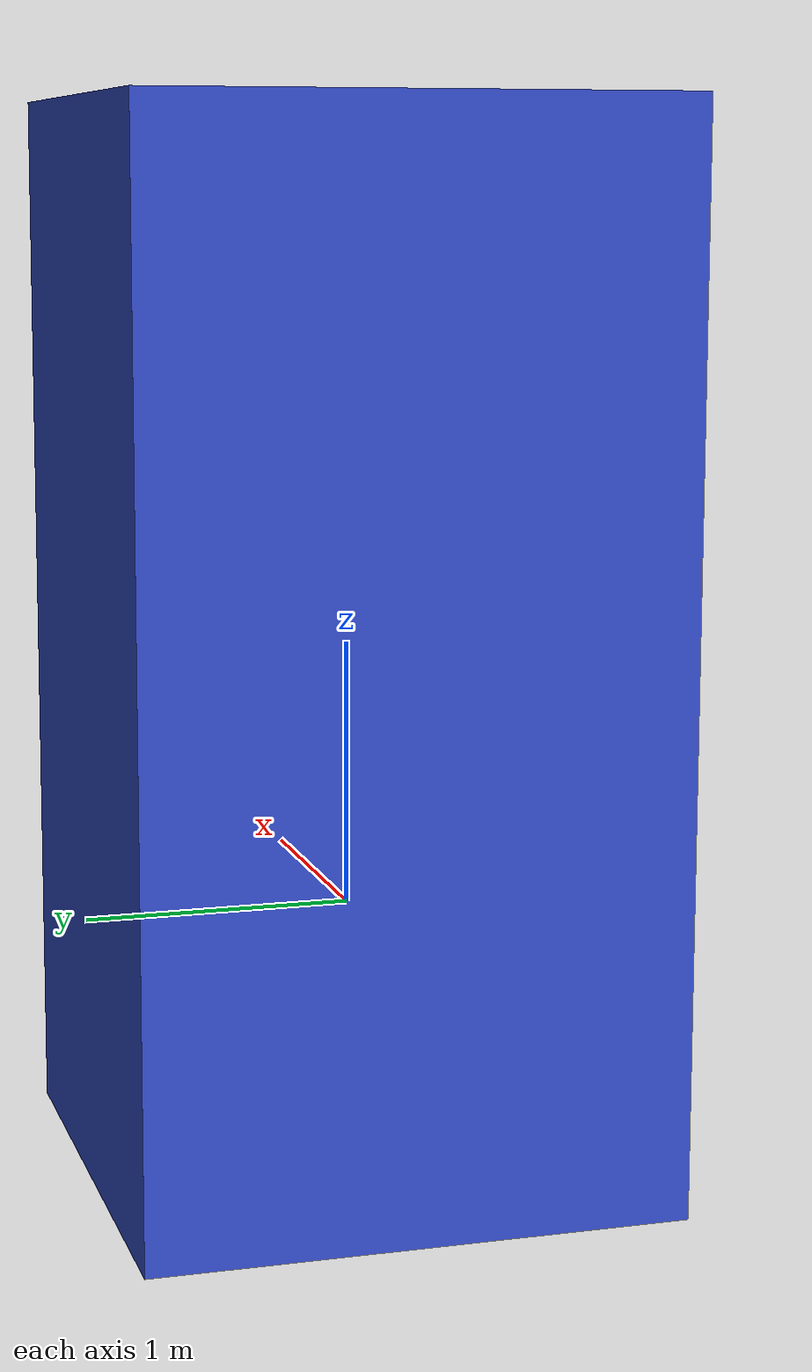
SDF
<?xml version="1.0" ?>
<sdf version="1.6">
  <model name="obstacle_box">
    <pose>0 0 1 0 0 0</pose>
    <static>true</static>

    <link name="link">
      <inertial>
        <mass>1.0</mass>
      </inertial>

      <collision name="collision">
        <geometry>
          <box>
            <size>2 2 4</size>
          </box>
        </geometry>
      </collision>

      <visual name="visual">
        <geometry>
          <box>
            <size>2 2 4</size>
          </box>
        </geometry>
        <material>
          <ambient>0.2 0.3 0.8 1</ambient>
          <diffuse>0.2 0.3 0.8 1</diffuse>
        </material>
      </visual>
    </link>
  </model>
</sdf>
